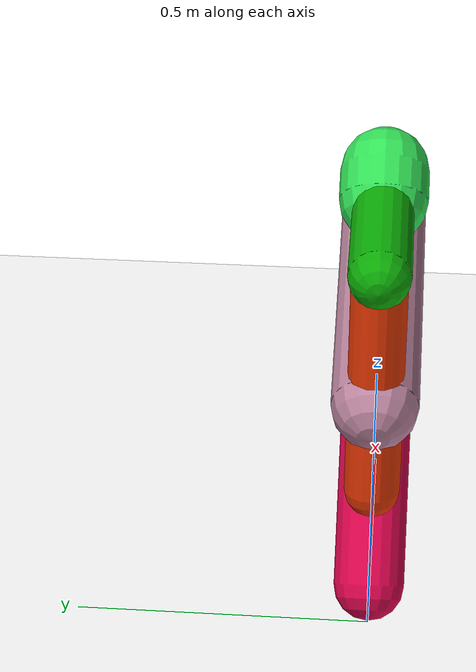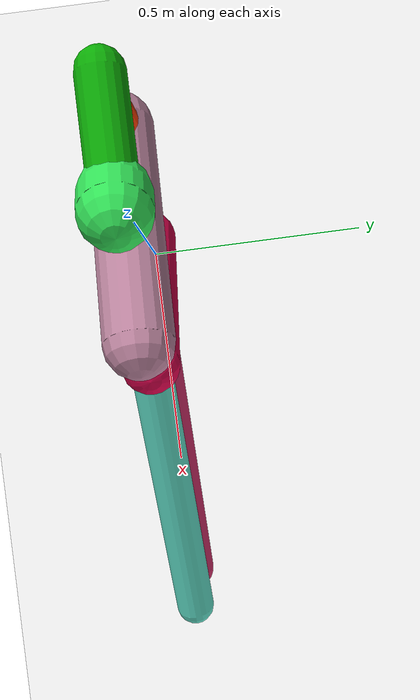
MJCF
<mujoco model="morphology">
  <option timestep="0.01"/>
  <default>
    <default class="/"/>
    <default class="0/"/>
    <default class="0/1/"/>
    <default class="0/1/2/"/>
    <default class="0/1/2/3/"/>
    <default class="0/1/2/3/4/"/>
    <default class="0/1/2/3/4/5/"/>
    <default class="0/1/2/3/4/5/6/"/>
  </default>
  <asset>
    <texture name="texplane" type="2d" builtin="checker" rgb1="0.10000000000000001 0.20000000000000001 0.29999999999999999" rgb2="0.20000000000000001 0.29999999999999999 0.40000000000000002" width="300" height="300"/>
    <material name="MatPlane" class="/" texture="texplane" texrepeat="20 20" specular="1" shininess="1" reflectance="0.5"/>
  </asset>
  <worldbody>
    <light name="//unnamed_light_0" class="/" directional="true" pos="0 0 1.5" dir="0 0 -1.3" cutoff="100" exponent="1" diffuse="1 1 1" specular="0.10000000000000001 0.10000000000000001 0.10000000000000001"/>
    <geom name="ground" class="/" type="plane" size="15 15 0.5" material="MatPlane" rgba="1 1 1 1"/>
    <site name="body" class="/" size="9.9999999999999995e-07 9.9999999999999995e-07 9.9999999999999995e-07" pos="0 0 0.81401643753051756"/>
    <body pos="0 0 0.81401643753051756" name="0/">
      <joint name="0/rootx/" class="/" type="slide" axis="1 0 0" limited="false" stiffness="0" armature="0" damping="0"/>
      <joint name="0/rootz/" class="/" type="slide" axis="0 0 1" limited="false" stiffness="0" armature="0" damping="0"/>
      <joint name="0/rooty/" class="/" type="hinge" axis="0 1 0" limited="false" stiffness="0" armature="0" damping="0"/>
      <geom name="0/geom" class="0/" type="capsule" contype="1" conaffinity="1" condim="3" size="0.068853857754387779" rgba="0.19727757702823112 0.88315448451224188 0.34186469692631738 1" friction="0.59999999999999998 0.10000000000000001 0.10000000000000001" fromto="0 0 0 0.037787920464379399 0 0.031756944257239184"/>
      <site name="0/end0" class="0/" size="0.0050000000000000001" pos="0.037787920464379399 0 0.031756944257239184"/>
      <site name="0/attach1" class="0/" size="9.9999999999999995e-07 9.9999999999999995e-07 9.9999999999999995e-07" pos="0.006747032813404736 0 0.0056702020731475254"/>
      <body pos="0.006747032813404736 0 0.0056702020731475254" name="0/1/">
        <joint name="0/1/joint/" class="0/" type="hinge" axis="0 1 0" limited="true" range="-59.185345256281792 59.185345256281792"/>
        <geom name="0/1/geom" class="0/1/" type="capsule" contype="1" conaffinity="1" condim="3" size="0.047507650942685525" rgba="0.048681060961309086 0.67369951742930967 0.026327456004721528 1" friction="0.59999999999999998 0.10000000000000001 0.10000000000000001" fromto="0 0 0 -0.22744359804601266 0 -0.017572044993330982"/>
        <site name="0/1/end1" class="0/1/" size="0.0050000000000000001" pos="-0.22744359804601266 0 -0.017572044993330982"/>
        <site name="0/1/attach2" class="0/1/" size="9.9999999999999995e-07 9.9999999999999995e-07 9.9999999999999995e-07" pos="-0.17147558810569269 0 -0.01324801742206675"/>
        <body pos="-0.17147558810569269 0 -0.01324801742206675" name="0/1/2/">
          <joint name="0/1/2/joint/" class="0/1/" type="hinge" axis="0 1 0" limited="true" range="-35.639491747733373 35.639491747733373"/>
          <geom name="0/1/2/geom" class="0/1/2/" type="capsule" contype="1" conaffinity="1" condim="3" size="0.043278345940419641" rgba="0.89482882655474949 0.21100444508540095 0.012074246815026224 1" friction="0.59999999999999998 0.10000000000000001 0.10000000000000001" fromto="0 0 0 -0.029038400790599717 0 -0.39591957477501694"/>
          <site name="0/1/2/end2" class="0/1/2/" size="0.0050000000000000001" pos="-0.029038400790599717 0 -0.39591957477501694"/>
          <site name="0/1/2/attach3" class="0/1/2/" size="9.9999999999999995e-07 9.9999999999999995e-07 9.9999999999999995e-07" pos="-0.018353127093612628 0 -0.25023286671651751"/>
          <body pos="-0.018353127093612628 0 -0.25023286671651751" name="0/1/2/3/">
            <geom name="0/1/2/3/geom" class="0/1/2/3/" type="capsule" contype="1" conaffinity="1" condim="3" size="0.067889947514368637" rgba="0.73444033424806332 0.51888144352029564 0.62105780704677249 1" friction="0.59999999999999998 0.10000000000000001 0.10000000000000001" fromto="0 0 0 0.44044437423072447 0 0.15985290033318267"/>
            <site name="0/1/2/3/end3" class="0/1/2/3/" size="0.0050000000000000001" pos="0.44044437423072447 0 0.15985290033318267"/>
            <site name="0/1/2/3/attach4" class="0/1/2/3/" size="9.9999999999999995e-07 9.9999999999999995e-07 9.9999999999999995e-07" pos="0.28911631787050174 0 0.10493057613908816"/>
            <body pos="0.28911631787050174 0 0.10493057613908816" name="0/1/2/3/4/">
              <joint name="0/1/2/3/4/joint/" class="0/1/2/3/" type="hinge" axis="0 1 0" limited="true" range="-50.388459784758481 50.388459784758481"/>
              <geom name="0/1/2/3/4/geom" class="0/1/2/3/4/" type="capsule" contype="1" conaffinity="1" condim="3" size="0.041550706682815249" rgba="0.37752251291899519 0.87630520117608179 0.78742405866535414 1" friction="0.59999999999999998 0.10000000000000001 0.10000000000000001" fromto="0 0 0 0.72661936292325202 0 -0.51610319335911403"/>
              <site name="0/1/2/3/4/end4" class="0/1/2/3/4/" size="0.0050000000000000001" pos="0.72661936292325202 0 -0.51610319335911403"/>
              <site name="0/1/2/3/4/attach5" class="0/1/2/3/4/" size="9.9999999999999995e-07 9.9999999999999995e-07 9.9999999999999995e-07" pos="0.18501202851026338 0 -0.13141034164001469"/>
              <body pos="0.18501202851026338 0 -0.13141034164001469" name="0/1/2/3/4/5/">
                <geom name="0/1/2/3/4/5/geom" class="0/1/2/3/4/5/" type="capsule" contype="1" conaffinity="1" condim="3" size="0.058923228183213425" rgba="0.87525688058742879 0.016746428962216453 0.30779425906241442 1" friction="0.59999999999999998 0.10000000000000001 0.10000000000000001" fromto="0 0 0 -0.31969682872131361 0 -0.42972598439970522"/>
                <site name="0/1/2/3/4/5/end5" class="0/1/2/3/4/5/" size="0.0050000000000000001" pos="-0.31969682872131361 0 -0.42972598439970522"/>
                <site name="0/1/2/3/4/5/attach6" class="0/1/2/3/4/5/" size="9.9999999999999995e-07 9.9999999999999995e-07 9.9999999999999995e-07" pos="-0.10988763286593664 0 -0.14770734947712619"/>
                <body pos="-0.10988763286593664 0 -0.14770734947712619" name="0/1/2/3/4/5/6/">
                  <geom name="0/1/2/3/4/5/6/geom" class="0/1/2/3/4/5/6/" type="capsule" contype="1" conaffinity="1" condim="3" size="0.049356341434014489" rgba="0.83002753515402516 0.18996202070649226 0.42334225167466188 1" friction="0.59999999999999998 0.10000000000000001 0.10000000000000001" fromto="0 0 0 0.57222930499706814 0 -0.27832471376446688"/>
                  <site name="0/1/2/3/4/5/6/end6" class="0/1/2/3/4/5/6/" size="0.0050000000000000001" pos="0.57222930499706814 0 -0.27832471376446688"/>
                </body>
              </body>
            </body>
          </body>
        </body>
      </body>
      <camera name="0/side" class="0/" mode="trackcom" pos="0.40000000000000002 -4 0.20000000000000001" quat="0.70699999999999996 0.70699999999999996 0 0"/>
    </body>
  </worldbody>
  <actuator>
    <motor name="0/1/motor" class="0/1/" ctrllimited="true" ctrlrange="-1 1" gear="61" joint="0/1/joint/"/>
    <motor name="0/1/2/motor" class="0/1/2/" ctrllimited="true" ctrlrange="-1 1" gear="63" joint="0/1/2/joint/"/>
    <motor name="0/1/2/3/4/motor" class="0/1/2/3/4/" ctrllimited="true" ctrlrange="-1 1" gear="76" joint="0/1/2/3/4/joint/"/>
  </actuator>
  <sensor>
    <subtreelinvel name="velocity" body="0/"/>
  </sensor>
</mujoco>
